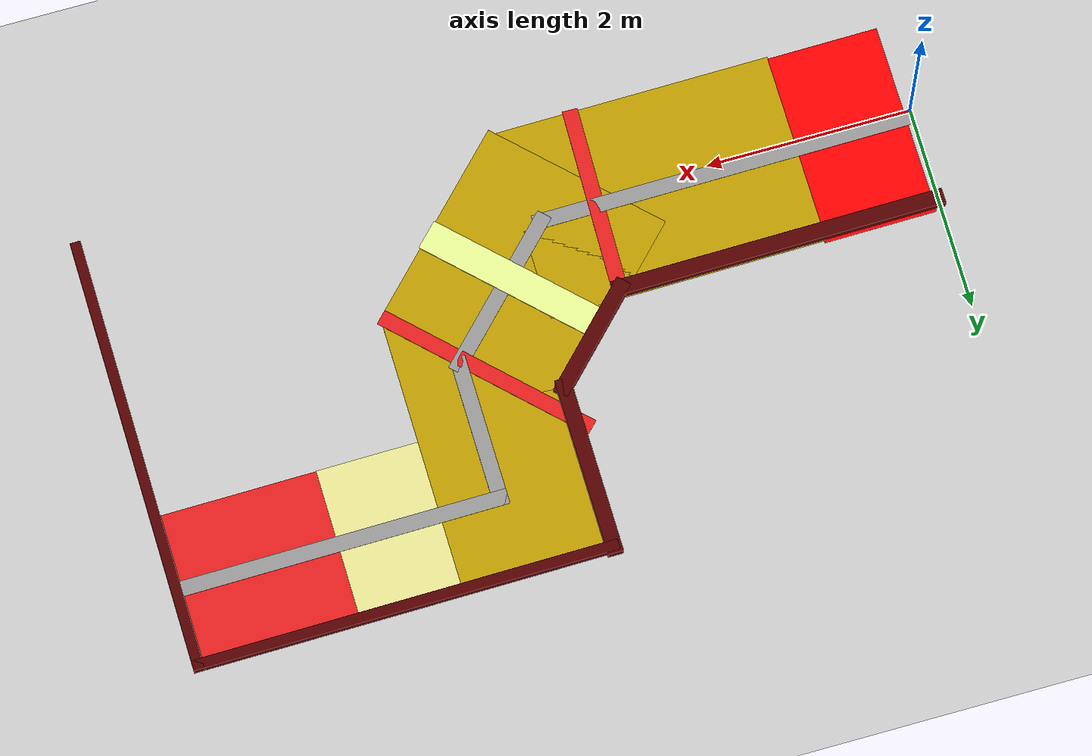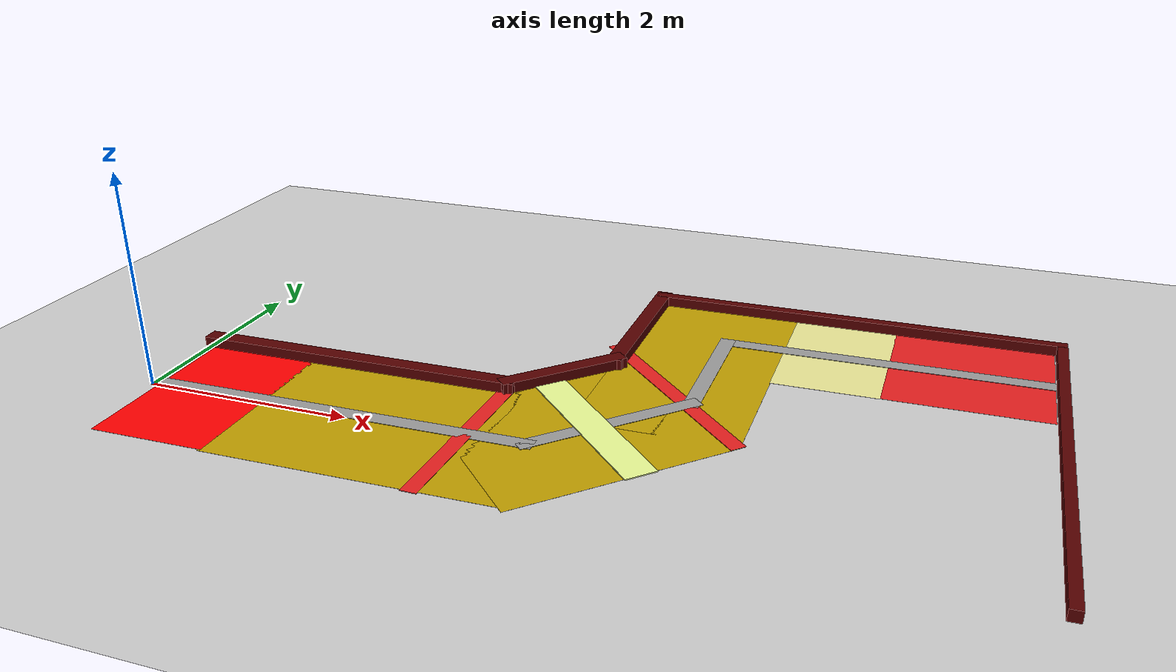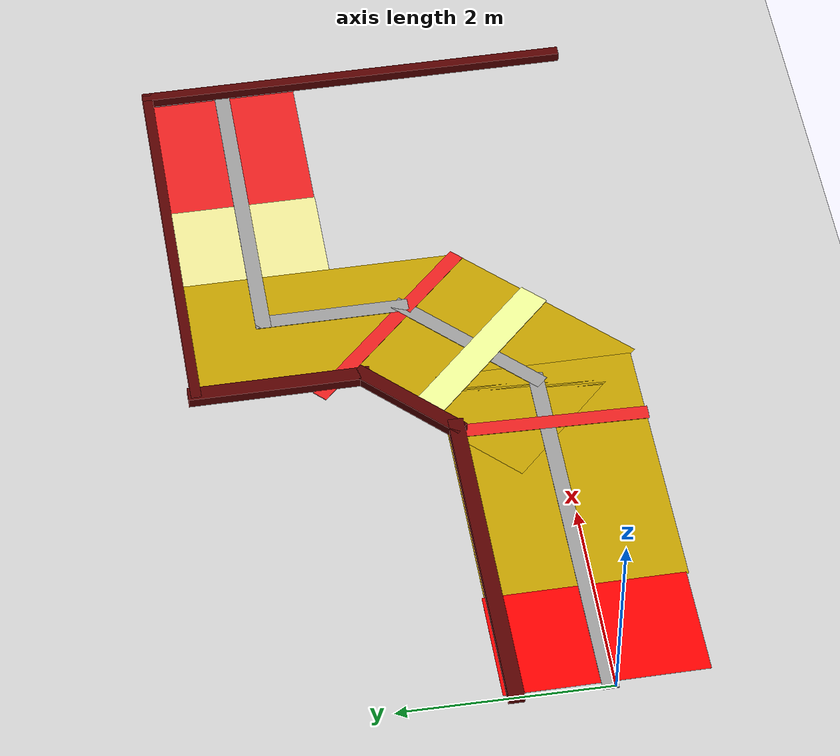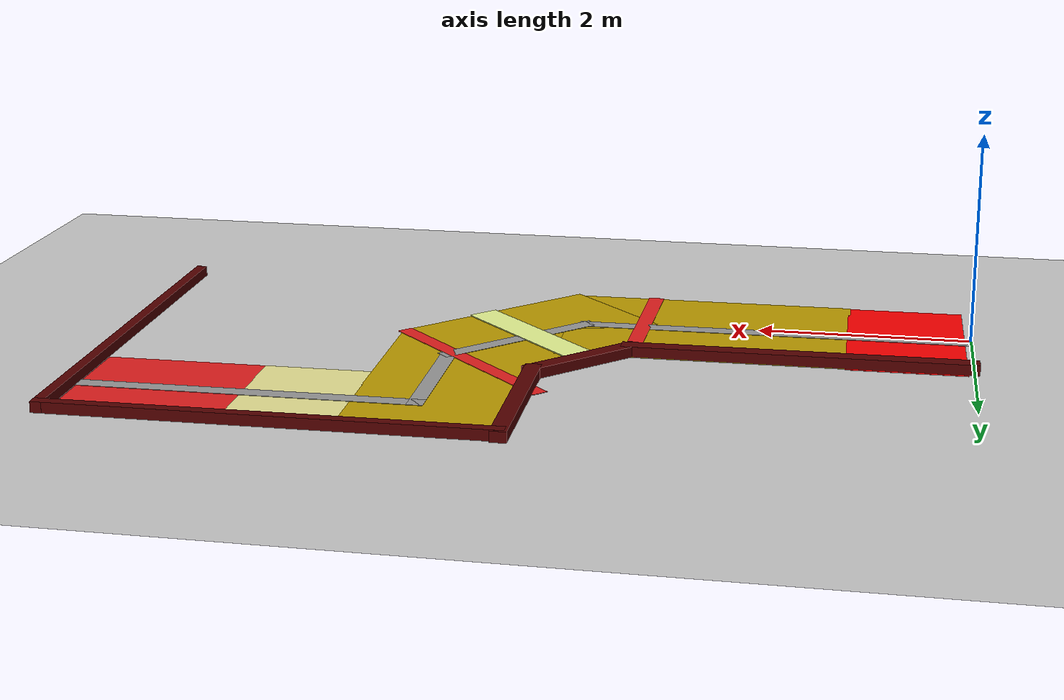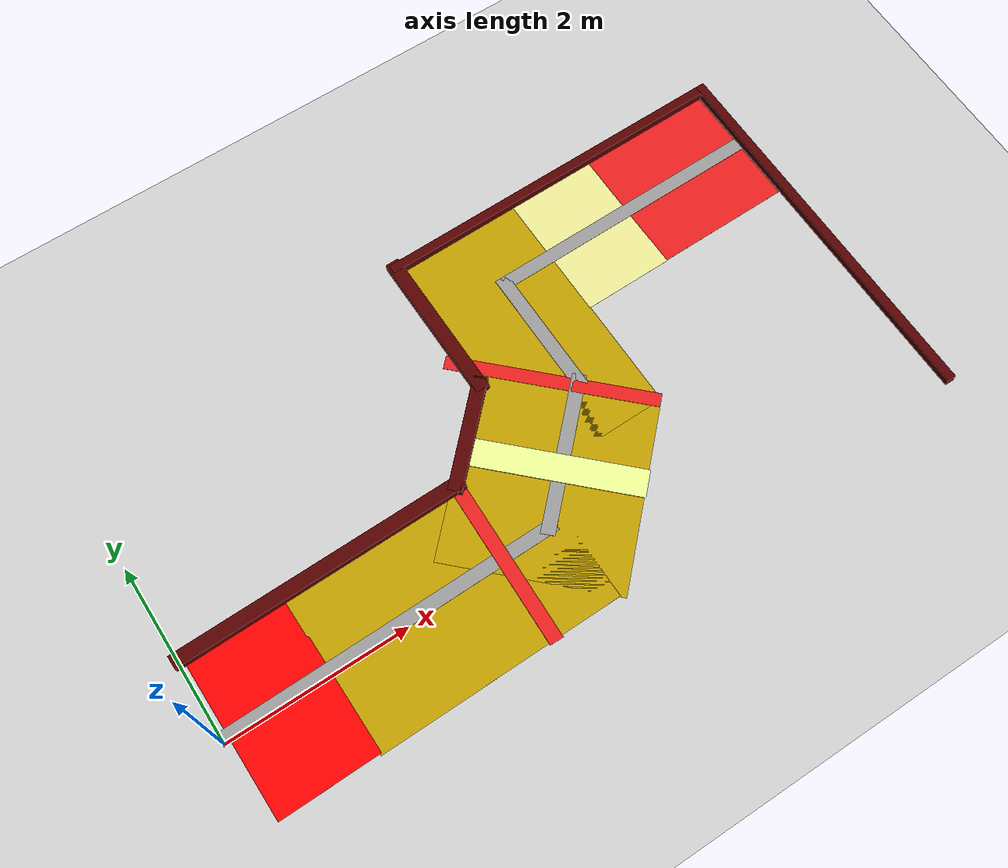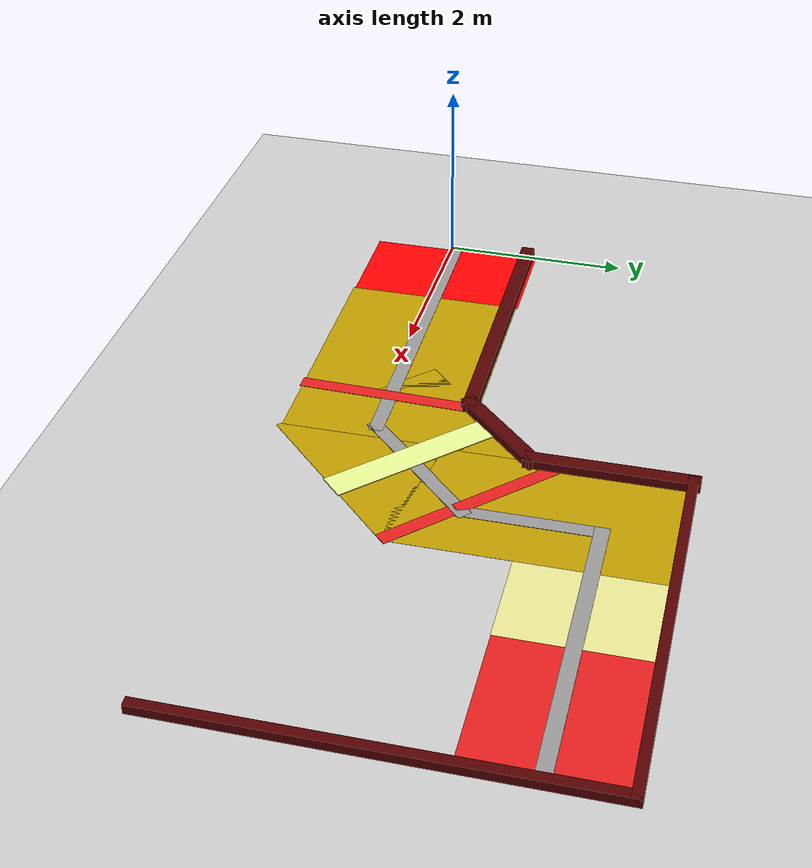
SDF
<sdf version="1.6">
 <world name="default">
  <light name="sun" type="directional">
   <pose>0 0 10 0 -0 0</pose>
   <diffuse>0.8 0.8 0.8 1</diffuse>
   <specular>0.1 0.1 0.1 1</specular>
   <attenuation>
    <range>1000</range>
    <constant>0.9</constant>
    <linear>0.01</linear>
    <quadratic>0.001</quadratic>
   </attenuation>
   <direction>-0.5 0.5 -1</direction>
  </light>
  <model name="ground_plane">
   <static>1</static>
   <link name="link">
    <collision name="collision">
     <geometry><plane><normal>0 0 1</normal><size>100 100</size></plane></geometry>
     <surface><friction><ode><mu>100</mu><mu2>50</mu2></ode></friction></surface>
    </collision>
    <visual name="visual">
     <cast_shadows>0</cast_shadows>
     <geometry><plane><normal>0 0 1</normal><size>100 100</size></plane></geometry>
     <material>
      <script><uri>file://media/materials/scripts/gazebo.material</uri><name>Gazebo/Grey</name></script>
     </material>
    </visual>
   </link>
  </model>
  <gravity>0 0 -9.8</gravity>
  <magnetic_field>6e-06 2.3e-05 -4.2e-05</magnetic_field>
  <atmosphere type="adiabatic"/>
  <physics name="default_physics" default="0" type="ode">
   <max_step_size>0.001</max_step_size>
   <real_time_factor>1</real_time_factor>
   <real_time_update_rate>1000</real_time_update_rate>
  </physics>
  <scene><ambient>0.4 0.4 0.4 1</ambient><background>0.7 0.7 0.7 1</background><shadows>1</shadows></scene>
  <spherical_coordinates>
   <surface_model>EARTH_WGS84</surface_model>
   <latitude_deg>0</latitude_deg>
   <longitude_deg>0</longitude_deg>
   <elevation>0</elevation>
   <heading_deg>0</heading_deg>
  </spherical_coordinates>
  <model name="MR2way">
   <pose>3.95126 1.24755 0 0 0 -1.55964</pose>
   <link name="Wall_0">
    <collision name="Wall_0_Collision">
     <geometry><box><size>4.3 0.1 0.101</size></box></geometry>
     <pose>0 0 0.0505 0 -0 0</pose>
    </collision>
    <visual name="Wall_0_Visual">
     <pose>0 0 0.0505 0 -0 0</pose>
     <geometry><box><size>4.3 0.1 0.101</size></box></geometry>
     <material>
      <script><uri>file://media/materials/scripts/gazebo.material</uri><name>Gazebo/Grey</name></script>
      <ambient>0.333333 0 0 1</ambient>
     </material>
    </visual>
    <pose>0.0125 3.9515 0 0 -0 0</pose>
   </link>
   <link name="Wall_11">
    <collision name="Wall_11_Collision">
     <geometry><box><size>1.45 1 0.001</size></box></geometry>
     <pose>0 0 0.0005 0 -0 0</pose>
    </collision>
    <visual name="Wall_11_Visual">
     <pose>0 0 0.0005 0 -0 0</pose>
     <geometry><box><size>1.45 1 0.001</size></box></geometry>
     <material>
      <script><uri>file://media/materials/scripts/gazebo.material</uri><name>Gazebo/Grey</name></script>
      <ambient>0.917647 0.901961 0.584314 1</ambient>
     </material>
    </visual>
    <pose>-1.3185 1.8985 0 0 -0 0</pose>
   </link>
   <link name="Wall_13">
    <collision name="Wall_13_Collision">
     <geometry><box><size>2.7 1.5 0.001</size></box></geometry>
     <pose>0 0 0.0005 0 -0 0</pose>
    </collision>
    <visual name="Wall_13_Visual">
     <pose>0 0 0.0005 0 -0 0</pose>
     <geometry><box><size>2.7 1.5 0.001</size></box></geometry>
     <material>
      <script><uri>file://media/materials/scripts/gazebo.material</uri><name>Gazebo/Grey</name></script>
      <ambient>0.74902 0.615686 0 1</ambient>
     </material>
    </visual>
    <pose>-0.688656 0.6565 0 0 -0 3.14159</pose>
   </link>
   <link name="Wall_15">
    <collision name="Wall_15_Collision">
     <geometry><box><size>2.12062 1.9 0.001</size></box></geometry>
     <pose>0 0 0.0005 0 -0 0</pose>
    </collision>
    <visual name="Wall_15_Visual">
     <pose>0 0 0.0005 0 -0 0</pose>
     <geometry><box><size>2.12062 1.9 0.001</size></box></geometry>
     <material>
      <script><uri>file://media/materials/scripts/gazebo.material</uri><name>Gazebo/Grey</name></script>
      <ambient>0.74902 0.615686 0 1</ambient>
     </material>
    </visual>
    <pose>0.73611 -0.0095 0 0 0 -0.785398</pose>
   </link>
   <link name="Wall_21">
    <collision name="Wall_21_Collision">
     <geometry><box><size>2.7 1.9 0.001</size></box></geometry>
     <pose>0 0 0.0005 0 -0 0</pose>
    </collision>
    <visual name="Wall_21_Visual">
     <pose>0 0 0.0005 0 -0 0</pose>
     <geometry><box><size>2.7 1.9 0.001</size></box></geometry>
     <material>
      <script><uri>file://media/materials/scripts/gazebo.material</uri><name>Gazebo/Grey</name></script>
      <ambient>0.74902 0.615686 0 1</ambient>
     </material>
    </visual>
    <pose>1.15609 -1.47421 0 0 0 -1.5708</pose>
   </link>
   <link name="Wall_23">
    <collision name="Wall_23_Collision">
     <geometry><box><size>1.9 1.1 0.001</size></box></geometry>
     <pose>0 0 0.0005 0 -0 0</pose>
    </collision>
    <visual name="Wall_23_Visual">
     <pose>0 0 0.0005 0 -0 0</pose>
     <geometry><box><size>1.9 1.1 0.001</size></box></geometry>
     <material>
      <script><uri>file://media/materials/scripts/gazebo.material</uri><name>Gazebo/Grey</name></script>
      <ambient>1 0 0 1</ambient>
     </material>
    </visual>
    <pose>1.1355 -3.3545 0 0 -0 3.14159</pose>
   </link>
   <link name="Wall_26">
    <collision name="Wall_26_Collision">
     <geometry><box><size>1.89948 0.3 0.01</size></box></geometry>
     <pose>0 0 0.005 0 -0 0</pose>
    </collision>
    <visual name="Wall_26_Visual">
     <pose>0 0 0.005 0 -0 0</pose>
     <geometry><box><size>1.89948 0.3 0.01</size></box></geometry>
     <material>
      <script><uri>file://media/materials/scripts/gazebo.material</uri><name>Gazebo/Grey</name></script>
      <ambient>0.917647 0.980392 0.584314 1</ambient>
     </material>
    </visual>
    <pose>0.658481 0.09087 0 0 -0 0.785398</pose>
   </link>
   <link name="Wall_28">
    <collision name="Wall_28_Collision">
     <geometry><box><size>3.25 0.15 0.005</size></box></geometry>
     <pose>0 0 0.0025 0 -0 0</pose>
    </collision>
    <visual name="Wall_28_Visual">
     <pose>0 0 0.0025 0 -0 0</pose>
     <geometry><box><size>3.25 0.15 0.005</size></box></geometry>
     <material>
      <script><uri>file://media/materials/scripts/gazebo.material</uri><name>Gazebo/Grey</name></script>
      <ambient>1 1 1 1</ambient>
     </material>
    </visual>
    <pose>-1.3295 2.3745 0 0 0 -1.5708</pose>
   </link>
   <link name="Wall_30">
    <collision name="Wall_30_Collision">
     <geometry><box><size>1.5 0.15 0.005</size></box></geometry>
     <pose>0 0 0.0025 0 -0 0</pose>
    </collision>
    <visual name="Wall_30_Visual">
     <pose>0 0 0.0025 0 -0 0</pose>
     <geometry><box><size>1.5 0.15 0.005</size></box></geometry>
     <material>
      <script><uri>file://media/materials/scripts/gazebo.material</uri><name>Gazebo/Grey</name></script>
      <ambient>1 1 1 1</ambient>
     </material>
    </visual>
    <pose>-0.6545 0.8245 0 0 -0 0</pose>
   </link>
   <link name="Wall_31">
    <collision name="Wall_31_Collision">
     <geometry><box><size>1.75 0.15 0.005</size></box></geometry>
     <pose>0 0 0.0025 0 -0 0</pose>
    </collision>
    <visual name="Wall_31_Visual">
     <pose>0 0 0.0025 0 -0 0</pose>
     <geometry><box><size>1.75 0.15 0.005</size></box></geometry>
     <material>
      <script><uri>file://media/materials/scripts/gazebo.material</uri><name>Gazebo/Grey</name></script>
      <ambient>1 1 1 1</ambient>
     </material>
    </visual>
    <pose>0.586 0.259 0 0 0 -0.785398</pose>
   </link>
   <link name="Wall_32">
    <collision name="Wall_32_Collision">
     <geometry><box><size>3.75 0.15 0.005</size></box></geometry>
     <pose>0 0 0.0025 0 -0 0</pose>
    </collision>
    <visual name="Wall_32_Visual">
     <pose>0 0 0.0025 0 -0 0</pose>
     <geometry><box><size>3.75 0.15 0.005</size></box></geometry>
     <material>
      <script><uri>file://media/materials/scripts/gazebo.material</uri><name>Gazebo/Grey</name></script>
      <ambient>1 1 1 1</ambient>
     </material>
    </visual>
    <pose>1.1515 -2.1065 0 0 0 -1.5708</pose>
   </link>
   <link name="Wall_34">
    <collision name="Wall_34_Collision">
     <geometry><box><size>2.25 0.15 0.005</size></box></geometry>
     <pose>0 0 0.0025 0 -0 0</pose>
    </collision>
    <visual name="Wall_34_Visual">
     <pose>0 0 0.0025 0 -0 0</pose>
     <geometry><box><size>2.25 0.15 0.005</size></box></geometry>
     <material>
      <script><uri>file://media/materials/scripts/gazebo.material</uri><name>Gazebo/Grey</name></script>
      <ambient>0.901961 0.121569 0.121569 1</ambient>
     </material>
    </visual>
    <pose>-0.124 0.602 0 0 -0 0.785398</pose>
   </link>
   <link name="Wall_37">
    <collision name="Wall_37_Collision">
     <geometry><box><size>1.91295 0.15 0.005</size></box></geometry>
     <pose>0 0 0.0025 0 -0 0</pose>
    </collision>
    <visual name="Wall_37_Visual">
     <pose>0 0 0.0025 0 -0 0</pose>
     <geometry><box><size>1.91295 0.15 0.005</size></box></geometry>
     <material>
      <script><uri>file://media/materials/scripts/gazebo.material</uri><name>Gazebo/Grey</name></script>
      <ambient>0.901961 0.121569 0.121569 1</ambient>
     </material>
    </visual>
    <pose>1.1715 -0.8525 0 0 0 -0.029503</pose>
   </link>
   <link name="Wall_39">
    <collision name="Wall_39_Collision">
     <geometry><box><size>1.75 0.15 0.1</size></box></geometry>
     <pose>0 0 0.05 0 -0 0</pose>
    </collision>
    <visual name="Wall_39_Visual">
     <pose>0 0 0.05 0 -0 0</pose>
     <geometry><box><size>1.75 0.15 0.1</size></box></geometry>
     <material>
      <script><uri>file://media/materials/scripts/gazebo.material</uri><name>Gazebo/Grey</name></script>
      <ambient>0.333333 0 0 1</ambient>
     </material>
    </visual>
    <pose>-1.2875 -0.0485 0 0 -0 0</pose>
   </link>
   <link name="Wall_40">
    <collision name="Wall_40_Collision">
     <geometry><box><size>1.25 0.15 0.1</size></box></geometry>
     <pose>0 0 0.05 0 -0 0</pose>
    </collision>
    <visual name="Wall_40_Visual">
     <pose>0 0 0.05 0 -0 0</pose>
     <geometry><box><size>1.25 0.15 0.1</size></box></geometry>
     <material>
      <script><uri>file://media/materials/scripts/gazebo.material</uri><name>Gazebo/Grey</name></script>
      <ambient>0.333333 0 0 1</ambient>
     </material>
    </visual>
    <pose>-0.0985 -0.4375 0 0 0 -0.785398</pose>
   </link>
   <link name="Wall_41">
    <collision name="Wall_41_Collision">
     <geometry><box><size>3.25 0.15 0.1</size></box></geometry>
     <pose>0 0 0.05 0 -0 0</pose>
    </collision>
    <visual name="Wall_41_Visual">
     <pose>0 0 0.05 0 -0 0</pose>
     <geometry><box><size>3.25 0.15 0.1</size></box></geometry>
     <material>
      <script><uri>file://media/materials/scripts/gazebo.material</uri><name>Gazebo/Grey</name></script>
      <ambient>0.333333 0 0 1</ambient>
     </material>
    </visual>
    <pose>0.2905 -2.3765 0 0 0 -1.5708</pose>
   </link>
   <link name="Wall_5">
    <collision name="Wall_5_Collision">
     <geometry><box><size>4.1 0.1 0.101</size></box></geometry>
     <pose>0 0 0.0505 0 -0 0</pose>
    </collision>
    <visual name="Wall_5_Visual">
     <pose>0 0 0.0505 0 -0 0</pose>
     <geometry><box><size>4.1 0.1 0.101</size></box></geometry>
     <material>
      <script><uri>file://media/materials/scripts/gazebo.material</uri><name>Gazebo/Grey</name></script>
      <ambient>0.333333 0 0 1</ambient>
     </material>
    </visual>
    <pose>-2.0875 1.9515 0 0 0 -1.5708</pose>
   </link>
   <link name="Wall_9">
    <collision name="Wall_9_Collision">
     <geometry><box><size>1.5 1.45 0.001</size></box></geometry>
     <pose>0 0 0.0005 0 -0 0</pose>
    </collision>
    <visual name="Wall_9_Visual">
     <pose>0 0 0.0005 0 -0 0</pose>
     <geometry><box><size>1.5 1.45 0.001</size></box></geometry>
     <material>
      <script><uri>file://media/materials/scripts/gazebo.material</uri><name>Gazebo/Grey</name></script>
      <ambient>0.901961 0.121569 0.121569 1</ambient>
     </material>
    </visual>
    <pose>-1.3235 3.1435 0 0 -0 1.5708</pose>
   </link>
   <static>1</static>
  </model>
 </world>
</sdf>
